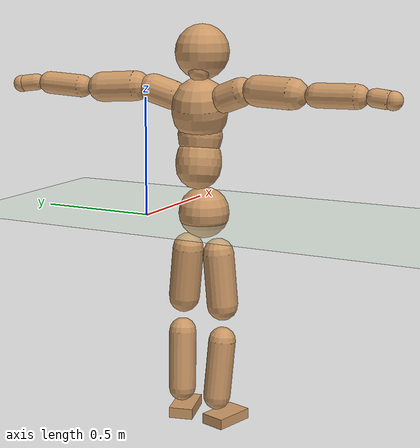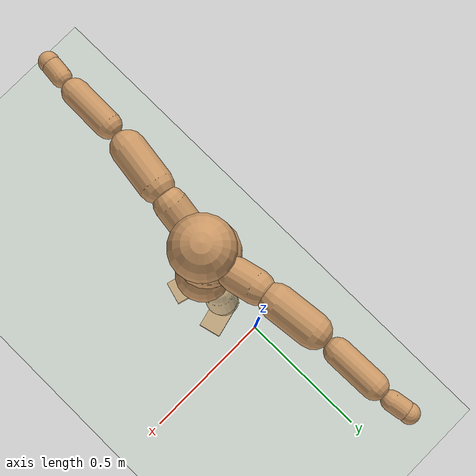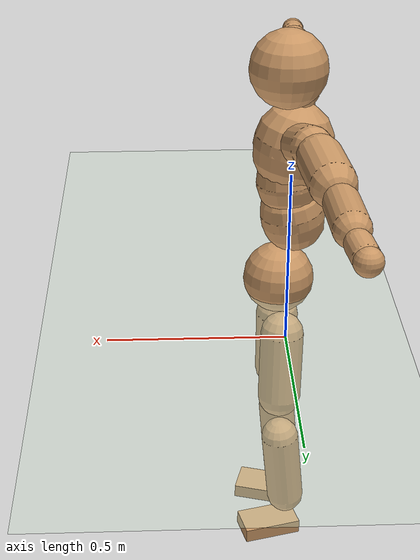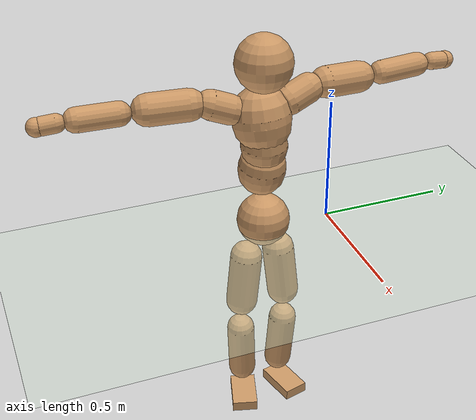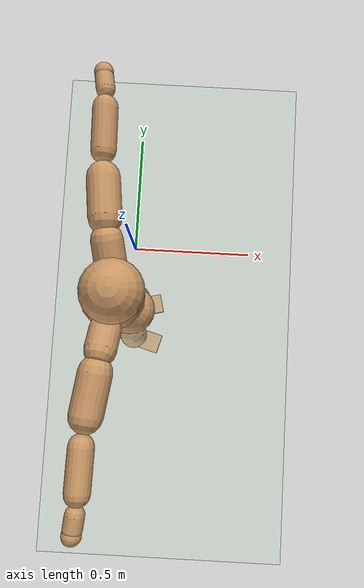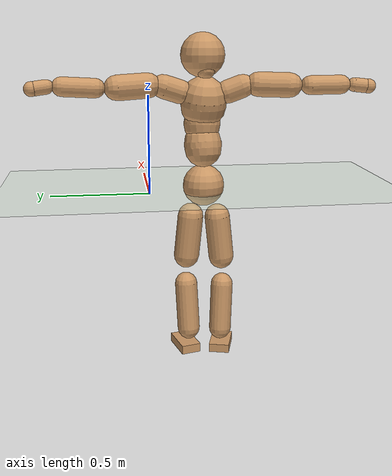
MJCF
<mujoco model="humanoid">
  <compiler coordinate="local"/>
  <default>
    <joint damping="0.0" armature="0.01" stiffness="0.0" limited="true"/>
    <geom conaffinity="1" condim="3" contype="7" margin="0.001" rgba="0.8 0.6 .4 1"/>
  </default>
  <asset>
    <texture type="skybox" builtin="gradient" rgb1=".4 .5 .6" rgb2="0 0 0" width="100" height="100"/>
    <texture builtin="flat" height="1278" mark="cross" markrgb="1 1 1" name="texgeom" random="0.01" rgb1="0.8 0.6 0.4" rgb2="0.8 0.6 0.4" type="cube" width="127"/>
    <texture builtin="checker" height="100" name="texplane" rgb1="0 0 0" rgb2="0.8 0.8 0.8" type="2d" width="100"/>
    <material name="MatPlane" reflectance="0.5" shininess="1" specular="1" texrepeat="60 60" texture="texplane"/>
    <material name="geom" texture="texgeom" texuniform="true"/>
  </asset>
  <worldbody>
    <light cutoff="100" diffuse="1 1 1" dir="-0 0 -1.3" directional="true" exponent="1" pos="0 0 1.3" specular=".1 .1 .1"/>
    <geom conaffinity="1" condim="3" name="floor" pos="0 0 0" rgba="0.8 0.9 0.8 1" size="100 100 .2" type="plane" material="MatPlane"/>
    <body name="Pelvis" pos="-0.0039 -0.2749 0.0389">
      <freejoint name="Pelvis"/>
      <geom type="sphere" contype="1" conaffinity="1" density="500" size="0.1060" pos="0.0000 0.0000 0.0000" name="Pelvis"/>
      <body name="L_Hip" pos="-0.0115 0.0615 -0.0863">
        <joint name="L_Hip_x" type="hinge" pos="0 0 0" axis="1 0 0" stiffness="800" damping="80" armature="0.02" range="-180.0000 180.0000"/>
        <joint name="L_Hip_y" type="hinge" pos="0 0 0" axis="0 1 0" stiffness="800" damping="80" armature="0.02" range="-180.0000 180.0000"/>
        <joint name="L_Hip_z" type="hinge" pos="0 0 0" axis="0 0 1" stiffness="800" damping="80" armature="0.02" range="-180.0000 180.0000"/>
        <geom type="capsule" contype="1" conaffinity="1" density="500" fromto="0.0016 0.0072 -0.0718 0.0065 0.0289 -0.2873" size="0.0651" name="L_Hip"/>
        <body name="L_Knee" pos="0.0081 0.0361 -0.3592">
          <joint name="L_Knee_x" type="hinge" pos="0 0 0" axis="1 0 0" stiffness="800" damping="80" armature="0.02" range="-180.0000 180.0000"/>
          <joint name="L_Knee_y" type="hinge" pos="0 0 0" axis="0 1 0" stiffness="800" damping="80" armature="0.02" range="-180.0000 180.0000"/>
          <joint name="L_Knee_z" type="hinge" pos="0 0 0" axis="0 0 1" stiffness="800" damping="80" armature="0.02" range="-180.0000 180.0000"/>
          <geom type="capsule" contype="1" conaffinity="1" density="500" fromto="-0.0082 -0.0033 -0.0811 -0.0328 -0.0131 -0.3246" size="0.0578" name="L_Knee"/>
          <body name="L_Ankle" pos="-0.041 -0.0164 -0.4057">
            <joint name="L_Ankle_x" type="hinge" pos="0 0 0" axis="1 0 0" stiffness="800" damping="80" armature="0.02" range="-180.0000 180.0000"/>
            <joint name="L_Ankle_y" type="hinge" pos="0 0 0" axis="0 1 0" stiffness="800" damping="80" armature="0.02" range="-180.0000 180.0000"/>
            <joint name="L_Ankle_z" type="hinge" pos="0 0 0" axis="0 0 1" stiffness="800" damping="80" armature="0.02" range="-180.0000 180.0000"/>
            <geom type="box" contype="1" conaffinity="1" density="500" pos="0.0611 0.0153 -0.0288" size="0.0903 0.0508 0.0226" quat="0.9925 0.0000 0.0000 0.1223" name="L_Ankle"/>
            <body name="L_Toe" pos="0.1222 0.0306 -0.0576">
              <joint name="L_Toe_x" type="hinge" pos="0 0 0" axis="1 0 0" stiffness="500" damping="50" armature="0.02" range="-180.0000 180.0000"/>
              <joint name="L_Toe_y" type="hinge" pos="0 0 0" axis="0 1 0" stiffness="500" damping="50" armature="0.02" range="-180.0000 180.0000"/>
              <joint name="L_Toe_z" type="hinge" pos="0 0 0" axis="0 0 1" stiffness="500" damping="50" armature="0.02" range="-180.0000 180.0000"/>
              <geom type="box" contype="1" conaffinity="1" density="500" pos="0.0000 0.0000 0.0286" size="0.001 0.0025 0.0011" quat="0.9918 0.0000 0.0000 0.1279" name="L_Toe"/>
            </body>
          </body>
        </body>
      </body>
      <body name="R_Hip" pos="-0.0063 -0.0636 -0.095">
        <joint name="R_Hip_x" type="hinge" pos="0 0 0" axis="1 0 0" stiffness="800" damping="80" armature="0.02" range="-180.0000 180.0000"/>
        <joint name="R_Hip_y" type="hinge" pos="0 0 0" axis="0 1 0" stiffness="800" damping="80" armature="0.02" range="-180.0000 180.0000"/>
        <joint name="R_Hip_z" type="hinge" pos="0 0 0" axis="0 0 1" stiffness="800" damping="80" armature="0.02" range="-180.0000 180.0000"/>
        <geom type="capsule" contype="1" conaffinity="1" density="500" fromto="-0.0007 -0.0072 -0.0726 -0.0029 -0.0290 -0.2905" size="0.0648" name="R_Hip"/>
        <body name="R_Knee" pos="-0.0037 -0.0362 -0.3631">
          <joint name="R_Knee_x" type="hinge" pos="0 0 0" axis="1 0 0" stiffness="800" damping="80" armature="0.02" range="-180.0000 180.0000"/>
          <joint name="R_Knee_y" type="hinge" pos="0 0 0" axis="0 1 0" stiffness="800" damping="80" armature="0.02" range="-180.0000 180.0000"/>
          <joint name="R_Knee_z" type="hinge" pos="0 0 0" axis="0 0 1" stiffness="800" damping="80" armature="0.02" range="-180.0000 180.0000"/>
          <geom type="capsule" contype="1" conaffinity="1" density="500" fromto="-0.0074 0.0040 -0.0802 -0.0295 0.0162 -0.3209" size="0.0573" name="R_Knee"/>
          <body name="R_Ankle" pos="-0.0369 0.0202 -0.4011">
            <joint name="R_Ankle_x" type="hinge" pos="0 0 0" axis="1 0 0" stiffness="800" damping="80" armature="0.02" range="-180.0000 180.0000"/>
            <joint name="R_Ankle_y" type="hinge" pos="0 0 0" axis="0 1 0" stiffness="800" damping="80" armature="0.02" range="-180.0000 180.0000"/>
            <joint name="R_Ankle_z" type="hinge" pos="0 0 0" axis="0 0 1" stiffness="800" damping="80" armature="0.02" range="-180.0000 180.0000"/>
            <geom type="box" contype="1" conaffinity="1" density="500" pos="0.0643 -0.0184 -0.0297" size="0.0883 0.053 0.0219" quat="0.9903 0.0000 0.0000 -0.1392" name="R_Ankle"/>
            <body name="R_Toe" pos="0.1286 -0.0369 -0.0594">
              <joint name="R_Toe_x" type="hinge" pos="0 0 0" axis="1 0 0" stiffness="500" damping="50" armature="0.02" range="-180.0000 180.0000"/>
              <joint name="R_Toe_y" type="hinge" pos="0 0 0" axis="0 1 0" stiffness="500" damping="50" armature="0.02" range="-180.0000 180.0000"/>
              <joint name="R_Toe_z" type="hinge" pos="0 0 0" axis="0 0 1" stiffness="500" damping="50" armature="0.02" range="-180.0000 180.0000"/>
              <geom type="box" contype="1" conaffinity="1" density="500" pos="0.0000 0.0000 0.0297" size="0.0012 0.0026 0.0011" quat="0.9915 0.0000 0.0000 -0.1301" name="R_Toe"/>
            </body>
          </body>
        </body>
      </body>
      <body name="Torso" pos="-0.0479 0.0044 0.1352">
        <joint name="Torso_x" type="hinge" pos="0 0 0" axis="1 0 0" stiffness="1000" damping="100" armature="0.02" range="-180.0000 180.0000"/>
        <joint name="Torso_y" type="hinge" pos="0 0 0" axis="0 1 0" stiffness="1000" damping="100" armature="0.02" range="-180.0000 180.0000"/>
        <joint name="Torso_z" type="hinge" pos="0 0 0" axis="0 0 1" stiffness="1000" damping="100" armature="0.02" range="-180.0000 180.0000"/>
        <geom type="capsule" contype="1" conaffinity="1" density="500" fromto="0.0164 0.0037 0.0921 0.0109 0.0025 0.0614" size="0.0938" name="Torso"/>
        <body name="Spine" pos="0.0273 0.0062 0.1535">
          <joint name="Spine_x" type="hinge" pos="0 0 0" axis="1 0 0" stiffness="1000" damping="100" armature="0.02" range="-180.0000 180.0000"/>
          <joint name="Spine_y" type="hinge" pos="0 0 0" axis="0 1 0" stiffness="1000" damping="100" armature="0.02" range="-180.0000 180.0000"/>
          <joint name="Spine_z" type="hinge" pos="0 0 0" axis="0 0 1" stiffness="1000" damping="100" armature="0.02" range="-180.0000 180.0000"/>
          <geom type="capsule" contype="1" conaffinity="1" density="500" fromto="0.0038 -0.0011 0.0372 0.0025 -0.0008 0.0248" size="0.0917" name="Spine"/>
          <body name="Chest" pos="0.0063 -0.0019 0.062">
            <joint name="Chest_x" type="hinge" pos="0 0 0" axis="1 0 0" stiffness="1000" damping="100" armature="0.02" range="-180.0000 180.0000"/>
            <joint name="Chest_y" type="hinge" pos="0 0 0" axis="0 1 0" stiffness="1000" damping="100" armature="0.02" range="-180.0000 180.0000"/>
            <joint name="Chest_z" type="hinge" pos="0 0 0" axis="0 0 1" stiffness="1000" damping="100" armature="0.02" range="-180.0000 180.0000"/>
            <geom type="capsule" contype="1" conaffinity="1" density="500" fromto="-0.0183 -0.0051 0.0916 -0.0122 -0.0034 0.0611" size="0.1143" name="Chest"/>
            <body name="Neck" pos="-0.0457 -0.014 0.2217">
              <joint name="Neck_x" type="hinge" pos="0 0 0" axis="1 0 0" stiffness="500" damping="50" armature="0.02" range="-180.0000 180.0000"/>
              <joint name="Neck_y" type="hinge" pos="0 0 0" axis="0 1 0" stiffness="500" damping="50" armature="0.02" range="-180.0000 180.0000"/>
              <joint name="Neck_z" type="hinge" pos="0 0 0" axis="0 0 1" stiffness="500" damping="50" armature="0.02" range="-180.0000 180.0000"/>
              <geom type="capsule" contype="1" conaffinity="1" density="500" fromto="0.0101 0.0021 0.0167 0.0405 0.0084 0.0669" size="0.049" name="Neck"/>
              <body name="Head" pos="0.0506 0.0105 0.0837">
                <joint name="Head_x" type="hinge" pos="0 0 0" axis="1 0 0" stiffness="500" damping="50" armature="0.02" range="-180.0000 180.0000"/>
                <joint name="Head_y" type="hinge" pos="0 0 0" axis="0 1 0" stiffness="500" damping="50" armature="0.02" range="-180.0000 180.0000"/>
                <joint name="Head_z" type="hinge" pos="0 0 0" axis="0 0 1" stiffness="500" damping="50" armature="0.02" range="-180.0000 180.0000"/>
                <geom type="sphere" contype="1" conaffinity="1" density="500" size="0.1109" pos="0.0000 0.0000 0.0000" name="Head"/>
              </body>
            </body>
            <body name="L_Thorax" pos="-0.0197 0.0832 0.1196">
              <joint name="L_Thorax_x" type="hinge" pos="0 0 0" axis="1 0 0" stiffness="500" damping="50" armature="0.02" range="-180.0000 180.0000"/>
              <joint name="L_Thorax_y" type="hinge" pos="0 0 0" axis="0 1 0" stiffness="500" damping="50" armature="0.02" range="-180.0000 180.0000"/>
              <joint name="L_Thorax_z" type="hinge" pos="0 0 0" axis="0 0 1" stiffness="500" damping="50" armature="0.02" range="-180.0000 180.0000"/>
              <geom type="capsule" contype="1" conaffinity="1" density="500" fromto="-0.0055 0.0280 0.0094 -0.0219 0.1118 0.0377" size="0.0591" name="L_Thorax"/>
              <body name="L_Shoulder" pos="-0.0274 0.1398 0.0471">
                <joint name="L_Shoulder_x" type="hinge" pos="0 0 0" axis="1 0 0" stiffness="500" damping="50" armature="0.02" range="-720.0000 720.0000"/>
                <joint name="L_Shoulder_y" type="hinge" pos="0 0 0" axis="0 1 0" stiffness="500" damping="50" armature="0.02" range="-720.0000 720.0000"/>
                <joint name="L_Shoulder_z" type="hinge" pos="0 0 0" axis="0 0 1" stiffness="500" damping="50" armature="0.02" range="-720.0000 720.0000"/>
                <geom type="capsule" contype="1" conaffinity="1" density="500" fromto="-0.0056 0.0494 -0.0027 -0.0224 0.1975 -0.0108" size="0.0621" name="L_Shoulder"/>
                <body name="L_Elbow" pos="-0.028 0.2469 -0.0135">
                  <joint name="L_Elbow_x" type="hinge" pos="0 0 0" axis="1 0 0" stiffness="500" damping="50" armature="0.02" range="-720.0000 720.0000"/>
                  <joint name="L_Elbow_y" type="hinge" pos="0 0 0" axis="0 1 0" stiffness="500" damping="50" armature="0.02" range="-720.0000 720.0000"/>
                  <joint name="L_Elbow_z" type="hinge" pos="0 0 0" axis="0 0 1" stiffness="500" damping="50" armature="0.02" range="-720.0000 720.0000"/>
                  <geom type="capsule" contype="1" conaffinity="1" density="500" fromto="-0.0009 0.0522 0.0029 -0.0036 0.2088 0.0118" size="0.0472" name="L_Elbow"/>
                  <body name="L_Wrist" pos="-0.0045 0.261 0.0147">
                    <joint name="L_Wrist_x" type="hinge" pos="0 0 0" axis="1 0 0" stiffness="300" damping="30" armature="0.02" range="-180.0000 180.0000"/>
                    <joint name="L_Wrist_y" type="hinge" pos="0 0 0" axis="0 1 0" stiffness="300" damping="30" armature="0.02" range="-180.0000 180.0000"/>
                    <joint name="L_Wrist_z" type="hinge" pos="0 0 0" axis="0 0 1" stiffness="300" damping="30" armature="0.02" range="-180.0000 180.0000"/>
                    <geom type="capsule" contype="1" conaffinity="1" density="500" fromto="-0.0030 0.0172 -0.0022 -0.0120 0.0690 -0.0086" size="0.0349" name="L_Wrist"/>
                    <body name="L_Hand" pos="-0.015 0.0862 -0.0108">
                      <joint name="L_Hand_x" type="hinge" pos="0 0 0" axis="1 0 0" stiffness="300" damping="30" armature="0.02" range="-180.0000 180.0000"/>
                      <joint name="L_Hand_y" type="hinge" pos="0 0 0" axis="0 1 0" stiffness="300" damping="30" armature="0.02" range="-180.0000 180.0000"/>
                      <joint name="L_Hand_z" type="hinge" pos="0 0 0" axis="0 0 1" stiffness="300" damping="30" armature="0.02" range="-180.0000 180.0000"/>
                      <geom type="sphere" contype="1" conaffinity="1" density="500" size="0.0357" pos="0.0000 0.0000 0.0000" name="L_Hand"/>
                    </body>
                  </body>
                </body>
              </body>
            </body>
            <body name="R_Thorax" pos="-0.0263 -0.0948 0.1167">
              <joint name="R_Thorax_x" type="hinge" pos="0 0 0" axis="1 0 0" stiffness="500" damping="50" armature="0.02" range="-180.0000 180.0000"/>
              <joint name="R_Thorax_y" type="hinge" pos="0 0 0" axis="0 1 0" stiffness="500" damping="50" armature="0.02" range="-180.0000 180.0000"/>
              <joint name="R_Thorax_z" type="hinge" pos="0 0 0" axis="0 0 1" stiffness="500" damping="50" armature="0.02" range="-180.0000 180.0000"/>
              <geom type="capsule" contype="1" conaffinity="1" density="500" fromto="-0.0030 -0.0255 0.0097 -0.0121 -0.1021 0.0387" size="0.0581" name="R_Thorax"/>
              <body name="R_Shoulder" pos="-0.0151 -0.1277 0.0483">
                <joint name="R_Shoulder_x" type="hinge" pos="0 0 0" axis="1 0 0" stiffness="500" damping="50" armature="0.02" range="-720.0000 720.0000"/>
                <joint name="R_Shoulder_y" type="hinge" pos="0 0 0" axis="0 1 0" stiffness="500" damping="50" armature="0.02" range="-720.0000 720.0000"/>
                <joint name="R_Shoulder_z" type="hinge" pos="0 0 0" axis="0 0 1" stiffness="500" damping="50" armature="0.02" range="-720.0000 720.0000"/>
                <geom type="capsule" contype="1" conaffinity="1" density="500" fromto="-0.0076 -0.0508 -0.0014 -0.0303 -0.2033 -0.0054" size="0.0617" name="R_Shoulder"/>
                <body name="R_Elbow" pos="-0.0379 -0.2542 -0.0068">
                  <joint name="R_Elbow_x" type="hinge" pos="0 0 0" axis="1 0 0" stiffness="500" damping="50" armature="0.02" range="-720.0000 720.0000"/>
                  <joint name="R_Elbow_y" type="hinge" pos="0 0 0" axis="0 1 0" stiffness="500" damping="50" armature="0.02" range="-720.0000 720.0000"/>
                  <joint name="R_Elbow_z" type="hinge" pos="0 0 0" axis="0 0 1" stiffness="500" damping="50" armature="0.02" range="-720.0000 720.0000"/>
                  <geom type="capsule" contype="1" conaffinity="1" density="500" fromto="-0.0008 -0.0517 0.0006 -0.0033 -0.2069 0.0023" size="0.0473" name="R_Elbow"/>
                  <body name="R_Wrist" pos="-0.0041 -0.2586 0.0028">
                    <joint name="R_Wrist_x" type="hinge" pos="0 0 0" axis="1 0 0" stiffness="300" damping="30" armature="0.02" range="-180.0000 180.0000"/>
                    <joint name="R_Wrist_y" type="hinge" pos="0 0 0" axis="0 1 0" stiffness="300" damping="30" armature="0.02" range="-180.0000 180.0000"/>
                    <joint name="R_Wrist_z" type="hinge" pos="0 0 0" axis="0 0 1" stiffness="300" damping="30" armature="0.02" range="-180.0000 180.0000"/>
                    <geom type="capsule" contype="1" conaffinity="1" density="500" fromto="-0.0019 -0.0176 -0.0018 -0.0077 -0.0704 -0.0070" size="0.0353" name="R_Wrist"/>
                    <body name="R_Hand" pos="-0.0097 -0.088 -0.0088">
                      <joint name="R_Hand_x" type="hinge" pos="0 0 0" axis="1 0 0" stiffness="300" damping="30" armature="0.02" range="-180.0000 180.0000"/>
                      <joint name="R_Hand_y" type="hinge" pos="0 0 0" axis="0 1 0" stiffness="300" damping="30" armature="0.02" range="-180.0000 180.0000"/>
                      <joint name="R_Hand_z" type="hinge" pos="0 0 0" axis="0 0 1" stiffness="300" damping="30" armature="0.02" range="-180.0000 180.0000"/>
                      <geom type="sphere" contype="1" conaffinity="1" density="500" size="0.0360" pos="0.0000 0.0000 0.0000" name="R_Hand"/>
                    </body>
                  </body>
                </body>
              </body>
            </body>
          </body>
        </body>
      </body>
    </body>
  </worldbody>
  <actuator>
    <motor name="L_Hip_x" joint="L_Hip_x" gear="500"/>
    <motor name="L_Hip_y" joint="L_Hip_y" gear="500"/>
    <motor name="L_Hip_z" joint="L_Hip_z" gear="500"/>
    <motor name="L_Knee_x" joint="L_Knee_x" gear="500"/>
    <motor name="L_Knee_y" joint="L_Knee_y" gear="500"/>
    <motor name="L_Knee_z" joint="L_Knee_z" gear="500"/>
    <motor name="L_Ankle_x" joint="L_Ankle_x" gear="500"/>
    <motor name="L_Ankle_y" joint="L_Ankle_y" gear="500"/>
    <motor name="L_Ankle_z" joint="L_Ankle_z" gear="500"/>
    <motor name="L_Toe_x" joint="L_Toe_x" gear="500"/>
    <motor name="L_Toe_y" joint="L_Toe_y" gear="500"/>
    <motor name="L_Toe_z" joint="L_Toe_z" gear="500"/>
    <motor name="R_Hip_x" joint="R_Hip_x" gear="500"/>
    <motor name="R_Hip_y" joint="R_Hip_y" gear="500"/>
    <motor name="R_Hip_z" joint="R_Hip_z" gear="500"/>
    <motor name="R_Knee_x" joint="R_Knee_x" gear="500"/>
    <motor name="R_Knee_y" joint="R_Knee_y" gear="500"/>
    <motor name="R_Knee_z" joint="R_Knee_z" gear="500"/>
    <motor name="R_Ankle_x" joint="R_Ankle_x" gear="500"/>
    <motor name="R_Ankle_y" joint="R_Ankle_y" gear="500"/>
    <motor name="R_Ankle_z" joint="R_Ankle_z" gear="500"/>
    <motor name="R_Toe_x" joint="R_Toe_x" gear="500"/>
    <motor name="R_Toe_y" joint="R_Toe_y" gear="500"/>
    <motor name="R_Toe_z" joint="R_Toe_z" gear="500"/>
    <motor name="Torso_x" joint="Torso_x" gear="500"/>
    <motor name="Torso_y" joint="Torso_y" gear="500"/>
    <motor name="Torso_z" joint="Torso_z" gear="500"/>
    <motor name="Spine_x" joint="Spine_x" gear="500"/>
    <motor name="Spine_y" joint="Spine_y" gear="500"/>
    <motor name="Spine_z" joint="Spine_z" gear="500"/>
    <motor name="Chest_x" joint="Chest_x" gear="500"/>
    <motor name="Chest_y" joint="Chest_y" gear="500"/>
    <motor name="Chest_z" joint="Chest_z" gear="500"/>
    <motor name="Neck_x" joint="Neck_x" gear="500"/>
    <motor name="Neck_y" joint="Neck_y" gear="500"/>
    <motor name="Neck_z" joint="Neck_z" gear="500"/>
    <motor name="Head_x" joint="Head_x" gear="500"/>
    <motor name="Head_y" joint="Head_y" gear="500"/>
    <motor name="Head_z" joint="Head_z" gear="500"/>
    <motor name="L_Thorax_x" joint="L_Thorax_x" gear="500"/>
    <motor name="L_Thorax_y" joint="L_Thorax_y" gear="500"/>
    <motor name="L_Thorax_z" joint="L_Thorax_z" gear="500"/>
    <motor name="L_Shoulder_x" joint="L_Shoulder_x" gear="500"/>
    <motor name="L_Shoulder_y" joint="L_Shoulder_y" gear="500"/>
    <motor name="L_Shoulder_z" joint="L_Shoulder_z" gear="500"/>
    <motor name="L_Elbow_x" joint="L_Elbow_x" gear="500"/>
    <motor name="L_Elbow_y" joint="L_Elbow_y" gear="500"/>
    <motor name="L_Elbow_z" joint="L_Elbow_z" gear="500"/>
    <motor name="L_Wrist_x" joint="L_Wrist_x" gear="500"/>
    <motor name="L_Wrist_y" joint="L_Wrist_y" gear="500"/>
    <motor name="L_Wrist_z" joint="L_Wrist_z" gear="500"/>
    <motor name="L_Hand_x" joint="L_Hand_x" gear="500"/>
    <motor name="L_Hand_y" joint="L_Hand_y" gear="500"/>
    <motor name="L_Hand_z" joint="L_Hand_z" gear="500"/>
    <motor name="R_Thorax_x" joint="R_Thorax_x" gear="500"/>
    <motor name="R_Thorax_y" joint="R_Thorax_y" gear="500"/>
    <motor name="R_Thorax_z" joint="R_Thorax_z" gear="500"/>
    <motor name="R_Shoulder_x" joint="R_Shoulder_x" gear="500"/>
    <motor name="R_Shoulder_y" joint="R_Shoulder_y" gear="500"/>
    <motor name="R_Shoulder_z" joint="R_Shoulder_z" gear="500"/>
    <motor name="R_Elbow_x" joint="R_Elbow_x" gear="500"/>
    <motor name="R_Elbow_y" joint="R_Elbow_y" gear="500"/>
    <motor name="R_Elbow_z" joint="R_Elbow_z" gear="500"/>
    <motor name="R_Wrist_x" joint="R_Wrist_x" gear="500"/>
    <motor name="R_Wrist_y" joint="R_Wrist_y" gear="500"/>
    <motor name="R_Wrist_z" joint="R_Wrist_z" gear="500"/>
    <motor name="R_Hand_x" joint="R_Hand_x" gear="500"/>
    <motor name="R_Hand_y" joint="R_Hand_y" gear="500"/>
    <motor name="R_Hand_z" joint="R_Hand_z" gear="500"/>
  </actuator>
  <contact>
    <exclude body1="Torso" body2="Chest"/>
    <exclude body1="Head" body2="Chest"/>
    <exclude body1="R_Knee" body2="R_Toe"/>
    <exclude body1="R_Knee" body2="L_Ankle"/>
    <exclude body1="R_Knee" body2="L_Toe"/>
    <exclude body1="L_Knee" body2="L_Toe"/>
    <exclude body1="L_Knee" body2="R_Ankle"/>
    <exclude body1="L_Knee" body2="R_Toe"/>
    <exclude body1="L_Shoulder" body2="Chest"/>
    <exclude body1="R_Shoulder" body2="Chest"/>
  </contact>
  <sensor/>
  <size njmax="700" nconmax="700"/>
</mujoco>
